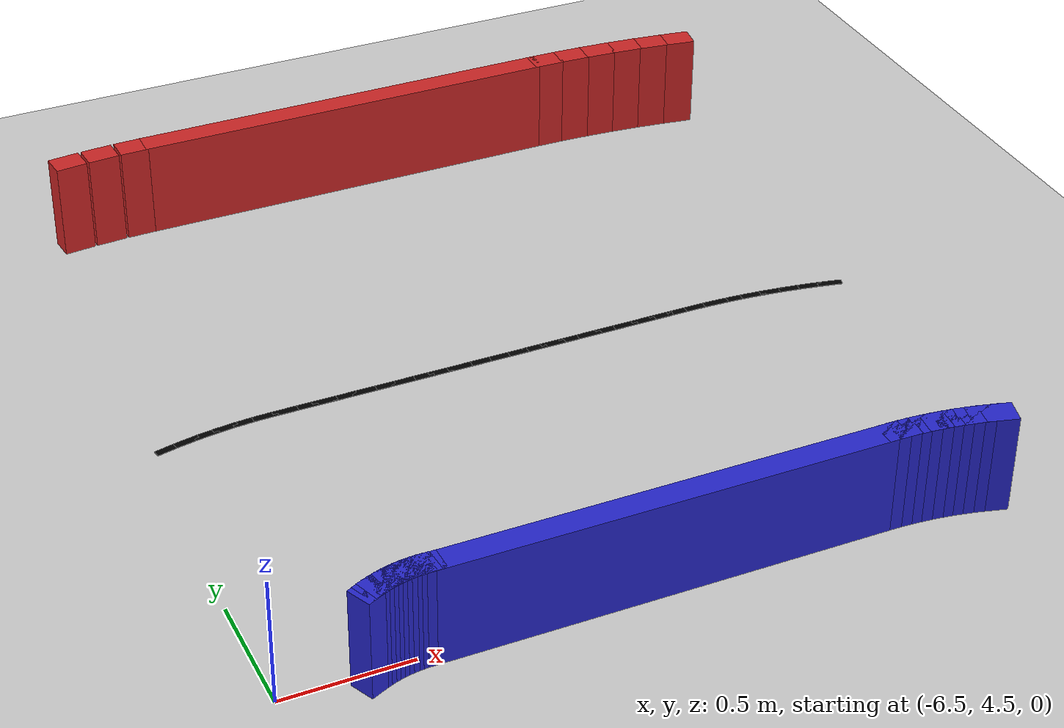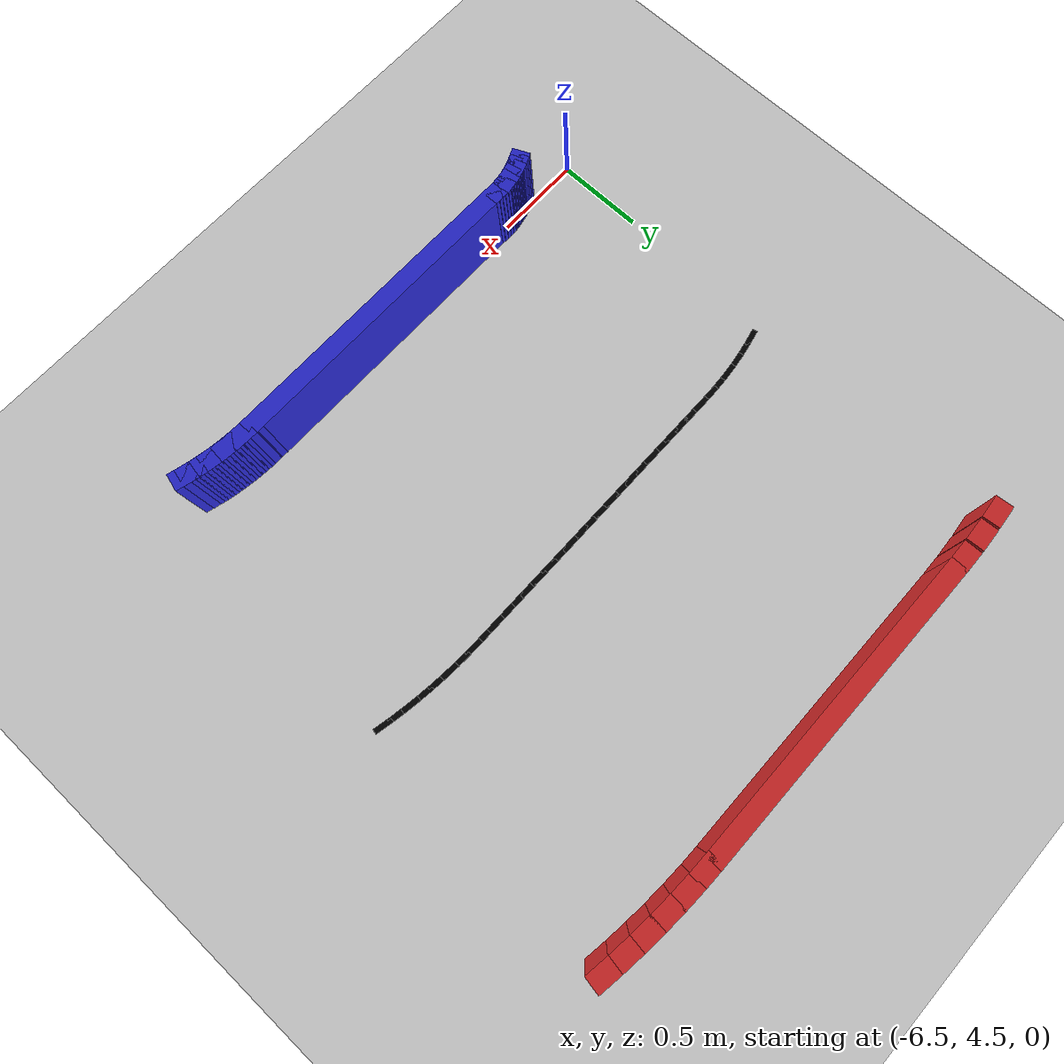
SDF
<sdf version="1.6">
 <world name="new_race_track">
  <include><uri>model://ground_plane</uri></include>
  <include><uri>model://sun</uri></include>
  <model name="race_track">
   <static>true</static>
   <link name="wall_link_361">
    <collision name="c"><geometry><box><size>0.1333 0.1 0.4</size></box></geometry></collision>
    <visual name="v">
     <geometry><box><size>0.1333 0.1 0.4</size></box></geometry>
     <material><ambient>0.15 0.15 0.8 1</ambient><diffuse>0.15 0.15 0.8 1</diffuse></material>
    </visual>
    <pose>-3.8110 4.4478 0.200 0 0 2.8778</pose>
   </link>
   <link name="wall_link_362">
    <collision name="c"><geometry><box><size>0.1333 0.1 0.4</size></box></geometry></collision>
    <visual name="v">
     <geometry><box><size>0.1333 0.1 0.4</size></box></geometry>
     <material><ambient>0.15 0.15 0.8 1</ambient><diffuse>0.15 0.15 0.8 1</diffuse></material>
    </visual>
    <pose>-3.8514 4.4581 0.200 0 0 2.9056</pose>
   </link>
   <link name="wall_link_363">
    <collision name="c"><geometry><box><size>0.1333 0.1 0.4</size></box></geometry></collision>
    <visual name="v">
     <geometry><box><size>0.1333 0.1 0.4</size></box></geometry>
     <material><ambient>0.15 0.15 0.8 1</ambient><diffuse>0.15 0.15 0.8 1</diffuse></material>
    </visual>
    <pose>-3.8920 4.4673 0.200 0 0 2.9333</pose>
   </link>
   <link name="wall_link_364">
    <collision name="c"><geometry><box><size>0.1333 0.1 0.4</size></box></geometry></collision>
    <visual name="v">
     <geometry><box><size>0.1333 0.1 0.4</size></box></geometry>
     <material><ambient>0.15 0.15 0.8 1</ambient><diffuse>0.15 0.15 0.8 1</diffuse></material>
    </visual>
    <pose>-3.9329 4.4754 0.200 0 0 2.9611</pose>
   </link>
   <link name="wall_link_365">
    <collision name="c"><geometry><box><size>0.1333 0.1 0.4</size></box></geometry></collision>
    <visual name="v">
     <geometry><box><size>0.1333 0.1 0.4</size></box></geometry>
     <material><ambient>0.15 0.15 0.8 1</ambient><diffuse>0.15 0.15 0.8 1</diffuse></material>
    </visual>
    <pose>-3.9739 4.4823 0.200 0 0 2.9889</pose>
   </link>
   <link name="wall_link_366">
    <collision name="c"><geometry><box><size>0.1333 0.1 0.4</size></box></geometry></collision>
    <visual name="v">
     <geometry><box><size>0.1333 0.1 0.4</size></box></geometry>
     <material><ambient>0.15 0.15 0.8 1</ambient><diffuse>0.15 0.15 0.8 1</diffuse></material>
    </visual>
    <pose>-4.0152 4.4880 0.200 0 0 3.0166</pose>
   </link>
   <link name="wall_link_367">
    <collision name="c"><geometry><box><size>0.1333 0.1 0.4</size></box></geometry></collision>
    <visual name="v">
     <geometry><box><size>0.1333 0.1 0.4</size></box></geometry>
     <material><ambient>0.15 0.15 0.8 1</ambient><diffuse>0.15 0.15 0.8 1</diffuse></material>
    </visual>
    <pose>-4.0566 4.4926 0.200 0 0 3.0444</pose>
   </link>
   <link name="wall_link_368">
    <collision name="c"><geometry><box><size>0.1333 0.1 0.4</size></box></geometry></collision>
    <visual name="v">
     <geometry><box><size>0.1333 0.1 0.4</size></box></geometry>
     <material><ambient>0.15 0.15 0.8 1</ambient><diffuse>0.15 0.15 0.8 1</diffuse></material>
    </visual>
    <pose>-4.0981 4.4961 0.200 0 0 3.0722</pose>
   </link>
   <link name="wall_link_369">
    <collision name="c"><geometry><box><size>0.1333 0.1 0.4</size></box></geometry></collision>
    <visual name="v">
     <geometry><box><size>0.1333 0.1 0.4</size></box></geometry>
     <material><ambient>0.15 0.15 0.8 1</ambient><diffuse>0.15 0.15 0.8 1</diffuse></material>
    </visual>
    <pose>-4.1396 4.4984 0.200 0 0 3.0999</pose>
   </link>
   <link name="wall_link_370">
    <collision name="c"><geometry><box><size>0.1333 0.1 0.4</size></box></geometry></collision>
    <visual name="v">
     <geometry><box><size>0.1333 0.1 0.4</size></box></geometry>
     <material><ambient>0.15 0.15 0.8 1</ambient><diffuse>0.15 0.15 0.8 1</diffuse></material>
    </visual>
    <pose>-4.1813 4.4996 0.200 0 0 3.1277</pose>
   </link>
   <link name="merged_wall_link_371">
    <pose>-5.0821 4.5000 0.2000 0.0000 0.0000 3.1416</pose>
    <collision name="c"><geometry><box><size>1.8100 0.1000 0.4000</size></box></geometry></collision>
    <visual name="v">
     <geometry><box><size>1.8100 0.1000 0.4000</size></box></geometry>
     <material><ambient>0.15 0.15 0.8 1</ambient><diffuse>0.15 0.15 0.8 1</diffuse></material>
    </visual>
   </link>
   <link name="wall_link_372">
    <collision name="c"><geometry><box><size>0.1305 0.1 0.4</size></box></geometry></collision>
    <visual name="v">
     <geometry><box><size>0.1305 0.1 0.4</size></box></geometry>
     <material><ambient>0.15 0.15 0.8 1</ambient><diffuse>0.15 0.15 0.8 1</diffuse></material>
    </visual>
    <pose>-5.9721 4.4995 0.200 0 0 -3.1215</pose>
   </link>
   <link name="wall_link_373">
    <collision name="c"><geometry><box><size>0.1305 0.1 0.4</size></box></geometry></collision>
    <visual name="v">
     <geometry><box><size>0.1305 0.1 0.4</size></box></geometry>
     <material><ambient>0.15 0.15 0.8 1</ambient><diffuse>0.15 0.15 0.8 1</diffuse></material>
    </visual>
    <pose>-5.9922 4.4987 0.200 0 0 -3.0812</pose>
   </link>
   <link name="wall_link_374">
    <collision name="c"><geometry><box><size>0.1305 0.1 0.4</size></box></geometry></collision>
    <visual name="v">
     <geometry><box><size>0.1305 0.1 0.4</size></box></geometry>
     <material><ambient>0.15 0.15 0.8 1</ambient><diffuse>0.15 0.15 0.8 1</diffuse></material>
    </visual>
    <pose>-6.0123 4.4971 0.200 0 0 -3.0409</pose>
   </link>
   <link name="wall_link_375">
    <collision name="c"><geometry><box><size>0.1305 0.1 0.4</size></box></geometry></collision>
    <visual name="v">
     <geometry><box><size>0.1305 0.1 0.4</size></box></geometry>
     <material><ambient>0.15 0.15 0.8 1</ambient><diffuse>0.15 0.15 0.8 1</diffuse></material>
    </visual>
    <pose>-6.0323 4.4946 0.200 0 0 -3.0006</pose>
   </link>
   <link name="wall_link_376">
    <collision name="c"><geometry><box><size>0.1305 0.1 0.4</size></box></geometry></collision>
    <visual name="v">
     <geometry><box><size>0.1305 0.1 0.4</size></box></geometry>
     <material><ambient>0.15 0.15 0.8 1</ambient><diffuse>0.15 0.15 0.8 1</diffuse></material>
    </visual>
    <pose>-6.0521 4.4914 0.200 0 0 -2.9603</pose>
   </link>
   <link name="wall_link_377">
    <collision name="c"><geometry><box><size>0.1305 0.1 0.4</size></box></geometry></collision>
    <visual name="v">
     <geometry><box><size>0.1305 0.1 0.4</size></box></geometry>
     <material><ambient>0.15 0.15 0.8 1</ambient><diffuse>0.15 0.15 0.8 1</diffuse></material>
    </visual>
    <pose>-6.0718 4.4874 0.200 0 0 -2.9201</pose>
   </link>
   <link name="wall_link_378">
    <collision name="c"><geometry><box><size>0.1305 0.1 0.4</size></box></geometry></collision>
    <visual name="v">
     <geometry><box><size>0.1305 0.1 0.4</size></box></geometry>
     <material><ambient>0.15 0.15 0.8 1</ambient><diffuse>0.15 0.15 0.8 1</diffuse></material>
    </visual>
    <pose>-6.0914 4.4826 0.200 0 0 -2.8798</pose>
   </link>
   <link name="wall_link_379">
    <collision name="c"><geometry><box><size>0.1305 0.1 0.4</size></box></geometry></collision>
    <visual name="v">
     <geometry><box><size>0.1305 0.1 0.4</size></box></geometry>
     <material><ambient>0.15 0.15 0.8 1</ambient><diffuse>0.15 0.15 0.8 1</diffuse></material>
    </visual>
    <pose>-6.1107 4.4770 0.200 0 0 -2.8395</pose>
   </link>
   <link name="wall_link_380">
    <collision name="c"><geometry><box><size>0.1305 0.1 0.4</size></box></geometry></collision>
    <visual name="v">
     <geometry><box><size>0.1305 0.1 0.4</size></box></geometry>
     <material><ambient>0.15 0.15 0.8 1</ambient><diffuse>0.15 0.15 0.8 1</diffuse></material>
    </visual>
    <pose>-6.1298 4.4706 0.200 0 0 -2.7992</pose>
   </link>
   <link name="wall_link_381">
    <collision name="c"><geometry><box><size>0.1305 0.1 0.4</size></box></geometry></collision>
    <visual name="v">
     <geometry><box><size>0.1305 0.1 0.4</size></box></geometry>
     <material><ambient>0.15 0.15 0.8 1</ambient><diffuse>0.15 0.15 0.8 1</diffuse></material>
    </visual>
    <pose>-6.1486 4.4635 0.200 0 0 -2.7590</pose>
   </link>
   <link name="wall_link_382">
    <collision name="c"><geometry><box><size>0.1305 0.1 0.4</size></box></geometry></collision>
    <visual name="v">
     <geometry><box><size>0.1305 0.1 0.4</size></box></geometry>
     <material><ambient>0.15 0.15 0.8 1</ambient><diffuse>0.15 0.15 0.8 1</diffuse></material>
    </visual>
    <pose>-6.1671 4.4556 0.200 0 0 -2.7187</pose>
   </link>
   <link name="wall_link_777">
    <collision name="c"><geometry><box><size>0.1333 0.1 0.4</size></box></geometry></collision>
    <visual name="v">
     <geometry><box><size>0.1333 0.1 0.4</size></box></geometry>
     <material><ambient>0.8 0.15 0.15 1</ambient><diffuse>0.8 0.15 0.15 1</diffuse></material>
    </visual>
    <pose>-3.5176 7.4473 0.200 0 0 2.9889</pose>
   </link>
   <link name="wall_link_778">
    <collision name="c"><geometry><box><size>0.1333 0.1 0.4</size></box></geometry></collision>
    <visual name="v">
     <geometry><box><size>0.1333 0.1 0.4</size></box></geometry>
     <material><ambient>0.8 0.15 0.15 1</ambient><diffuse>0.8 0.15 0.15 1</diffuse></material>
    </visual>
    <pose>-3.6413 7.4646 0.200 0 0 3.0166</pose>
   </link>
   <link name="wall_link_779">
    <collision name="c"><geometry><box><size>0.1333 0.1 0.4</size></box></geometry></collision>
    <visual name="v">
     <geometry><box><size>0.1333 0.1 0.4</size></box></geometry>
     <material><ambient>0.8 0.15 0.15 1</ambient><diffuse>0.8 0.15 0.15 1</diffuse></material>
    </visual>
    <pose>-3.7655 7.4785 0.200 0 0 3.0444</pose>
   </link>
   <link name="wall_link_780">
    <collision name="c"><geometry><box><size>0.1333 0.1 0.4</size></box></geometry></collision>
    <visual name="v">
     <geometry><box><size>0.1333 0.1 0.4</size></box></geometry>
     <material><ambient>0.8 0.15 0.15 1</ambient><diffuse>0.8 0.15 0.15 1</diffuse></material>
    </visual>
    <pose>-3.8900 7.4889 0.200 0 0 3.0722</pose>
   </link>
   <link name="wall_link_781">
    <collision name="c"><geometry><box><size>0.1333 0.1 0.4</size></box></geometry></collision>
    <visual name="v">
     <geometry><box><size>0.1333 0.1 0.4</size></box></geometry>
     <material><ambient>0.8 0.15 0.15 1</ambient><diffuse>0.8 0.15 0.15 1</diffuse></material>
    </visual>
    <pose>-4.0147 7.4958 0.200 0 0 3.0999</pose>
   </link>
   <link name="wall_link_782">
    <collision name="c"><geometry><box><size>0.1333 0.1 0.4</size></box></geometry></collision>
    <visual name="v">
     <geometry><box><size>0.1333 0.1 0.4</size></box></geometry>
     <material><ambient>0.8 0.15 0.15 1</ambient><diffuse>0.8 0.15 0.15 1</diffuse></material>
    </visual>
    <pose>-4.1396 7.4993 0.200 0 0 3.1277</pose>
   </link>
   <link name="merged_wall_link_783">
    <pose>-5.0821 7.5000 0.2000 0.0000 0.0000 3.1416</pose>
    <collision name="c"><geometry><box><size>1.8100 0.1000 0.4000</size></box></geometry></collision>
    <visual name="v">
     <geometry><box><size>1.8100 0.1000 0.4000</size></box></geometry>
     <material><ambient>0.8 0.15 0.15 1</ambient><diffuse>0.8 0.15 0.15 1</diffuse></material>
    </visual>
   </link>
   <link name="wall_link_784">
    <collision name="c"><geometry><box><size>0.1305 0.1 0.4</size></box></geometry></collision>
    <visual name="v">
     <geometry><box><size>0.1305 0.1 0.4</size></box></geometry>
     <material><ambient>0.8 0.15 0.15 1</ambient><diffuse>0.8 0.15 0.15 1</diffuse></material>
    </visual>
    <pose>-6.0325 7.4989 0.200 0 0 -3.1215</pose>
   </link>
   <link name="wall_link_785">
    <collision name="c"><geometry><box><size>0.1305 0.1 0.4</size></box></geometry></collision>
    <visual name="v">
     <geometry><box><size>0.1305 0.1 0.4</size></box></geometry>
     <material><ambient>0.8 0.15 0.15 1</ambient><diffuse>0.8 0.15 0.15 1</diffuse></material>
    </visual>
    <pose>-6.1734 7.4932 0.200 0 0 -3.0812</pose>
   </link>
   <link name="wall_link_786">
    <collision name="c"><geometry><box><size>0.1305 0.1 0.4</size></box></geometry></collision>
    <visual name="v">
     <geometry><box><size>0.1305 0.1 0.4</size></box></geometry>
     <material><ambient>0.8 0.15 0.15 1</ambient><diffuse>0.8 0.15 0.15 1</diffuse></material>
    </visual>
    <pose>-6.3139 7.4819 0.200 0 0 -3.0409</pose>
   </link>
   <link name="line_link_1488">
    <visual name="v">
     <geometry><box><size>0.1033 0.03 0.002</size></box></geometry>
     <material><ambient>0 0 0 1</ambient><diffuse>0 0 0 1</diffuse></material>
    </visual>
    <pose>-3.5819 5.9349 0.002 0 0 2.9333</pose>
   </link>
   <link name="line_link_1489">
    <visual name="v">
     <geometry><box><size>0.1033 0.03 0.002</size></box></geometry>
     <material><ambient>0 0 0 1</ambient><diffuse>0 0 0 1</diffuse></material>
    </visual>
    <pose>-3.6636 5.9510 0.002 0 0 2.9611</pose>
   </link>
   <link name="line_link_1490">
    <visual name="v">
     <geometry><box><size>0.1033 0.03 0.002</size></box></geometry>
     <material><ambient>0 0 0 1</ambient><diffuse>0 0 0 1</diffuse></material>
    </visual>
    <pose>-3.7457 5.9648 0.002 0 0 2.9889</pose>
   </link>
   <link name="line_link_1491">
    <visual name="v">
     <geometry><box><size>0.1033 0.03 0.002</size></box></geometry>
     <material><ambient>0 0 0 1</ambient><diffuse>0 0 0 1</diffuse></material>
    </visual>
    <pose>-3.8282 5.9763 0.002 0 0 3.0166</pose>
   </link>
   <link name="line_link_1492">
    <visual name="v">
     <geometry><box><size>0.1033 0.03 0.002</size></box></geometry>
     <material><ambient>0 0 0 1</ambient><diffuse>0 0 0 1</diffuse></material>
    </visual>
    <pose>-3.9110 5.9856 0.002 0 0 3.0444</pose>
   </link>
   <link name="line_link_1493">
    <visual name="v">
     <geometry><box><size>0.1033 0.03 0.002</size></box></geometry>
     <material><ambient>0 0 0 1</ambient><diffuse>0 0 0 1</diffuse></material>
    </visual>
    <pose>-3.9940 5.9925 0.002 0 0 3.0722</pose>
   </link>
   <link name="line_link_1494">
    <visual name="v">
     <geometry><box><size>0.1033 0.03 0.002</size></box></geometry>
     <material><ambient>0 0 0 1</ambient><diffuse>0 0 0 1</diffuse></material>
    </visual>
    <pose>-4.0772 5.9971 0.002 0 0 3.0999</pose>
   </link>
   <link name="line_link_1495">
    <visual name="v">
     <geometry><box><size>0.1033 0.03 0.002</size></box></geometry>
     <material><ambient>0 0 0 1</ambient><diffuse>0 0 0 1</diffuse></material>
    </visual>
    <pose>-4.1604 5.9994 0.002 0 0 3.1277</pose>
   </link>
   <link name="line_link_1496">
    <visual name="v">
     <geometry><box><size>0.1000 0.03 0.002</size></box></geometry>
     <material><ambient>0 0 0 1</ambient><diffuse>0 0 0 1</diffuse></material>
    </visual>
    <pose>-4.2421 6.0000 0.002 0 0 3.1416</pose>
   </link>
   <link name="line_link_1497">
    <visual name="v">
     <geometry><box><size>0.1000 0.03 0.002</size></box></geometry>
     <material><ambient>0 0 0 1</ambient><diffuse>0 0 0 1</diffuse></material>
    </visual>
    <pose>-4.3221 6.0000 0.002 0 0 3.1416</pose>
   </link>
   <link name="line_link_1498">
    <visual name="v">
     <geometry><box><size>0.1000 0.03 0.002</size></box></geometry>
     <material><ambient>0 0 0 1</ambient><diffuse>0 0 0 1</diffuse></material>
    </visual>
    <pose>-4.4021 6.0000 0.002 0 0 3.1416</pose>
   </link>
   <link name="line_link_1499">
    <visual name="v">
     <geometry><box><size>0.1000 0.03 0.002</size></box></geometry>
     <material><ambient>0 0 0 1</ambient><diffuse>0 0 0 1</diffuse></material>
    </visual>
    <pose>-4.4821 6.0000 0.002 0 0 3.1416</pose>
   </link>
   <link name="line_link_1500">
    <visual name="v">
     <geometry><box><size>0.1000 0.03 0.002</size></box></geometry>
     <material><ambient>0 0 0 1</ambient><diffuse>0 0 0 1</diffuse></material>
    </visual>
    <pose>-4.5621 6.0000 0.002 0 0 3.1416</pose>
   </link>
   <link name="line_link_1501">
    <visual name="v">
     <geometry><box><size>0.1000 0.03 0.002</size></box></geometry>
     <material><ambient>0 0 0 1</ambient><diffuse>0 0 0 1</diffuse></material>
    </visual>
    <pose>-4.6421 6.0000 0.002 0 0 3.1416</pose>
   </link>
   <link name="line_link_1502">
    <visual name="v">
     <geometry><box><size>0.1000 0.03 0.002</size></box></geometry>
     <material><ambient>0 0 0 1</ambient><diffuse>0 0 0 1</diffuse></material>
    </visual>
    <pose>-4.7221 6.0000 0.002 0 0 3.1416</pose>
   </link>
   <link name="line_link_1503">
    <visual name="v">
     <geometry><box><size>0.1000 0.03 0.002</size></box></geometry>
     <material><ambient>0 0 0 1</ambient><diffuse>0 0 0 1</diffuse></material>
    </visual>
    <pose>-4.8021 6.0000 0.002 0 0 3.1416</pose>
   </link>
   <link name="line_link_1504">
    <visual name="v">
     <geometry><box><size>0.1000 0.03 0.002</size></box></geometry>
     <material><ambient>0 0 0 1</ambient><diffuse>0 0 0 1</diffuse></material>
    </visual>
    <pose>-4.8821 6.0000 0.002 0 0 3.1416</pose>
   </link>
   <link name="line_link_1505">
    <visual name="v">
     <geometry><box><size>0.1000 0.03 0.002</size></box></geometry>
     <material><ambient>0 0 0 1</ambient><diffuse>0 0 0 1</diffuse></material>
    </visual>
    <pose>-4.9621 6.0000 0.002 0 0 3.1416</pose>
   </link>
   <link name="line_link_1506">
    <visual name="v">
     <geometry><box><size>0.1000 0.03 0.002</size></box></geometry>
     <material><ambient>0 0 0 1</ambient><diffuse>0 0 0 1</diffuse></material>
    </visual>
    <pose>-5.0421 6.0000 0.002 0 0 3.1416</pose>
   </link>
   <link name="line_link_1507">
    <visual name="v">
     <geometry><box><size>0.1000 0.03 0.002</size></box></geometry>
     <material><ambient>0 0 0 1</ambient><diffuse>0 0 0 1</diffuse></material>
    </visual>
    <pose>-5.1221 6.0000 0.002 0 0 3.1416</pose>
   </link>
   <link name="line_link_1508">
    <visual name="v">
     <geometry><box><size>0.1000 0.03 0.002</size></box></geometry>
     <material><ambient>0 0 0 1</ambient><diffuse>0 0 0 1</diffuse></material>
    </visual>
    <pose>-5.2021 6.0000 0.002 0 0 3.1416</pose>
   </link>
   <link name="line_link_1509">
    <visual name="v">
     <geometry><box><size>0.1000 0.03 0.002</size></box></geometry>
     <material><ambient>0 0 0 1</ambient><diffuse>0 0 0 1</diffuse></material>
    </visual>
    <pose>-5.2821 6.0000 0.002 0 0 3.1416</pose>
   </link>
   <link name="line_link_1510">
    <visual name="v">
     <geometry><box><size>0.1000 0.03 0.002</size></box></geometry>
     <material><ambient>0 0 0 1</ambient><diffuse>0 0 0 1</diffuse></material>
    </visual>
    <pose>-5.3621 6.0000 0.002 0 0 3.1416</pose>
   </link>
   <link name="line_link_1511">
    <visual name="v">
     <geometry><box><size>0.1000 0.03 0.002</size></box></geometry>
     <material><ambient>0 0 0 1</ambient><diffuse>0 0 0 1</diffuse></material>
    </visual>
    <pose>-5.4421 6.0000 0.002 0 0 3.1416</pose>
   </link>
   <link name="line_link_1512">
    <visual name="v">
     <geometry><box><size>0.1000 0.03 0.002</size></box></geometry>
     <material><ambient>0 0 0 1</ambient><diffuse>0 0 0 1</diffuse></material>
    </visual>
    <pose>-5.5221 6.0000 0.002 0 0 3.1416</pose>
   </link>
   <link name="line_link_1513">
    <visual name="v">
     <geometry><box><size>0.1000 0.03 0.002</size></box></geometry>
     <material><ambient>0 0 0 1</ambient><diffuse>0 0 0 1</diffuse></material>
    </visual>
    <pose>-5.6021 6.0000 0.002 0 0 3.1416</pose>
   </link>
   <link name="line_link_1514">
    <visual name="v">
     <geometry><box><size>0.1000 0.03 0.002</size></box></geometry>
     <material><ambient>0 0 0 1</ambient><diffuse>0 0 0 1</diffuse></material>
    </visual>
    <pose>-5.6821 6.0000 0.002 0 0 3.1416</pose>
   </link>
   <link name="line_link_1515">
    <visual name="v">
     <geometry><box><size>0.1000 0.03 0.002</size></box></geometry>
     <material><ambient>0 0 0 1</ambient><diffuse>0 0 0 1</diffuse></material>
    </visual>
    <pose>-5.7621 6.0000 0.002 0 0 3.1416</pose>
   </link>
   <link name="line_link_1516">
    <visual name="v">
     <geometry><box><size>0.1000 0.03 0.002</size></box></geometry>
     <material><ambient>0 0 0 1</ambient><diffuse>0 0 0 1</diffuse></material>
    </visual>
    <pose>-5.8421 6.0000 0.002 0 0 3.1416</pose>
   </link>
   <link name="line_link_1517">
    <visual name="v">
     <geometry><box><size>0.1000 0.03 0.002</size></box></geometry>
     <material><ambient>0 0 0 1</ambient><diffuse>0 0 0 1</diffuse></material>
    </visual>
    <pose>-5.9221 6.0000 0.002 0 0 3.1416</pose>
   </link>
   <link name="line_link_1518">
    <visual name="v">
     <geometry><box><size>0.1005 0.03 0.002</size></box></geometry>
     <material><ambient>0 0 0 1</ambient><diffuse>0 0 0 1</diffuse></material>
    </visual>
    <pose>-6.0023 5.9992 0.002 0 0 -3.1215</pose>
   </link>
   <link name="line_link_1519">
    <visual name="v">
     <geometry><box><size>0.1005 0.03 0.002</size></box></geometry>
     <material><ambient>0 0 0 1</ambient><diffuse>0 0 0 1</diffuse></material>
    </visual>
    <pose>-6.0828 5.9959 0.002 0 0 -3.0812</pose>
   </link>
   <link name="line_link_1520">
    <visual name="v">
     <geometry><box><size>0.1005 0.03 0.002</size></box></geometry>
     <material><ambient>0 0 0 1</ambient><diffuse>0 0 0 1</diffuse></material>
    </visual>
    <pose>-6.1631 5.9895 0.002 0 0 -3.0409</pose>
   </link>
   <link name="line_link_1521">
    <visual name="v">
     <geometry><box><size>0.1005 0.03 0.002</size></box></geometry>
     <material><ambient>0 0 0 1</ambient><diffuse>0 0 0 1</diffuse></material>
    </visual>
    <pose>-6.2430 5.9798 0.002 0 0 -3.0006</pose>
   </link>
   <link name="line_link_1522">
    <visual name="v">
     <geometry><box><size>0.1005 0.03 0.002</size></box></geometry>
     <material><ambient>0 0 0 1</ambient><diffuse>0 0 0 1</diffuse></material>
    </visual>
    <pose>-6.3225 5.9668 0.002 0 0 -2.9603</pose>
   </link>
   <link name="line_link_1523">
    <visual name="v">
     <geometry><box><size>0.1005 0.03 0.002</size></box></geometry>
     <material><ambient>0 0 0 1</ambient><diffuse>0 0 0 1</diffuse></material>
    </visual>
    <pose>-6.4014 5.9507 0.002 0 0 -2.9201</pose>
   </link>
  </model>
 </world>
</sdf>
